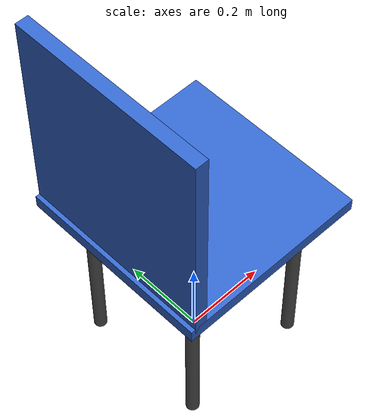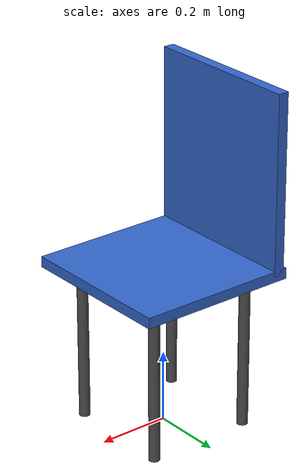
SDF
<?xml version="1.0"?>
<sdf version="1.9">
  <model name="classroom_chair">
    <static>true</static>
    <link name="link">
      <!-- Seat -->
      <visual name="seat_visual">
        <pose>0 0 0.45 0 0 0</pose>
        <geometry>
          <box>
            <size>0.45 0.45 0.03</size>
          </box>
        </geometry>
        <material>
          <ambient>0.2 0.4 0.8 1</ambient>
          <diffuse>0.2 0.4 0.8 1</diffuse>
        </material>
      </visual>
      <collision name="seat_collision">
        <pose>0 0 0.45 0 0 0</pose>
        <geometry>
          <box>
            <size>0.45 0.45 0.03</size>
          </box>
        </geometry>
      </collision>

      <!-- Backrest -->
      <visual name="backrest_visual">
        <pose>-0.2 0 0.7 0 0 0</pose>
        <geometry>
          <box>
            <size>0.03 0.45 0.5</size>
          </box>
        </geometry>
        <material>
          <ambient>0.2 0.4 0.8 1</ambient>
          <diffuse>0.2 0.4 0.8 1</diffuse>
        </material>
      </visual>
      <collision name="backrest_collision">
        <pose>-0.2 0 0.7 0 0 0</pose>
        <geometry>
          <box>
            <size>0.03 0.45 0.5</size>
          </box>
        </geometry>
      </collision>

      <!-- Leg 1 -->
      <visual name="leg1_visual">
        <pose>0.15 0.15 0.225 0 0 0</pose>
        <geometry>
          <cylinder>
            <radius>0.015</radius>
            <length>0.45</length>
          </cylinder>
        </geometry>
        <material>
          <ambient>0.3 0.3 0.3 1</ambient>
          <diffuse>0.3 0.3 0.3 1</diffuse>
        </material>
      </visual>
      <collision name="leg1_collision">
        <pose>0.15 0.15 0.225 0 0 0</pose>
        <geometry>
          <cylinder>
            <radius>0.015</radius>
            <length>0.45</length>
          </cylinder>
        </geometry>
      </collision>

      <!-- Leg 2 -->
      <visual name="leg2_visual">
        <pose>0.15 -0.15 0.225 0 0 0</pose>
        <geometry>
          <cylinder>
            <radius>0.015</radius>
            <length>0.45</length>
          </cylinder>
        </geometry>
        <material>
          <ambient>0.3 0.3 0.3 1</ambient>
          <diffuse>0.3 0.3 0.3 1</diffuse>
        </material>
      </visual>
      <collision name="leg2_collision">
        <pose>0.15 -0.15 0.225 0 0 0</pose>
        <geometry>
          <cylinder>
            <radius>0.015</radius>
            <length>0.45</length>
          </cylinder>
        </geometry>
      </collision>

      <!-- Leg 3 -->
      <visual name="leg3_visual">
        <pose>-0.15 0.15 0.225 0 0 0</pose>
        <geometry>
          <cylinder>
            <radius>0.015</radius>
            <length>0.45</length>
          </cylinder>
        </geometry>
        <material>
          <ambient>0.3 0.3 0.3 1</ambient>
          <diffuse>0.3 0.3 0.3 1</diffuse>
        </material>
      </visual>
      <collision name="leg3_collision">
        <pose>-0.15 0.15 0.225 0 0 0</pose>
        <geometry>
          <cylinder>
            <radius>0.015</radius>
            <length>0.45</length>
          </cylinder>
        </geometry>
      </collision>

      <!-- Leg 4 -->
      <visual name="leg4_visual">
        <pose>-0.15 -0.15 0.225 0 0 0</pose>
        <geometry>
          <cylinder>
            <radius>0.015</radius>
            <length>0.45</length>
          </cylinder>
        </geometry>
        <material>
          <ambient>0.3 0.3 0.3 1</ambient>
          <diffuse>0.3 0.3 0.3 1</diffuse>
        </material>
      </visual>
      <collision name="leg4_collision">
        <pose>-0.15 -0.15 0.225 0 0 0</pose>
        <geometry>
          <cylinder>
            <radius>0.015</radius>
            <length>0.45</length>
          </cylinder>
        </geometry>
      </collision>
    </link>
  </model>
</sdf>
